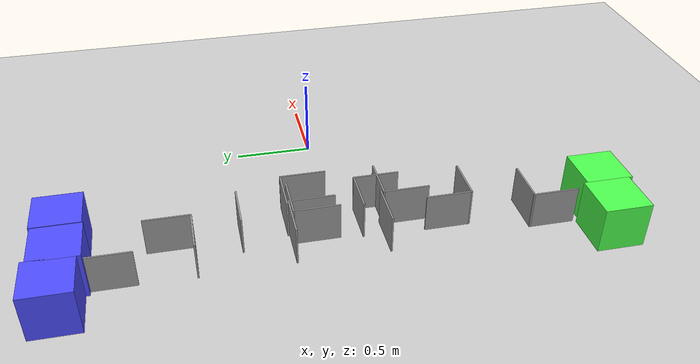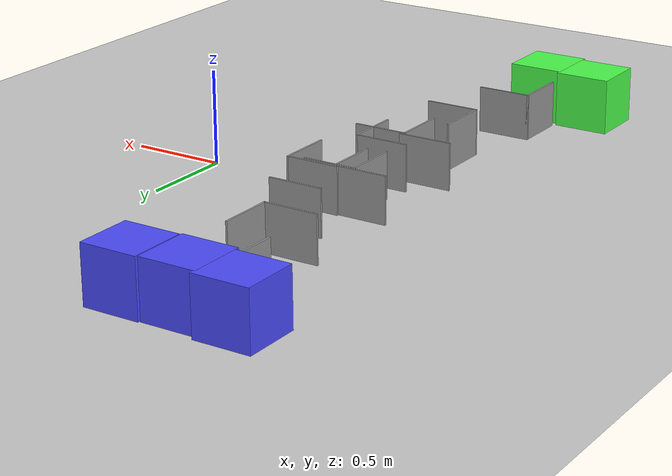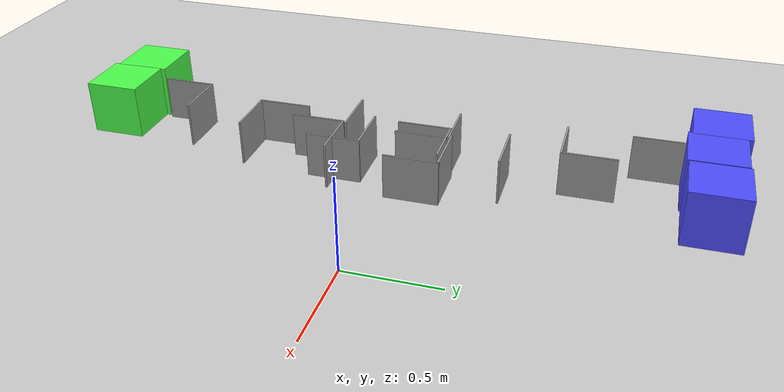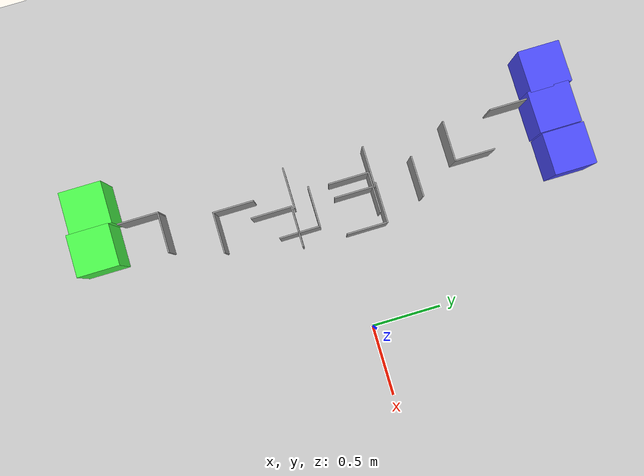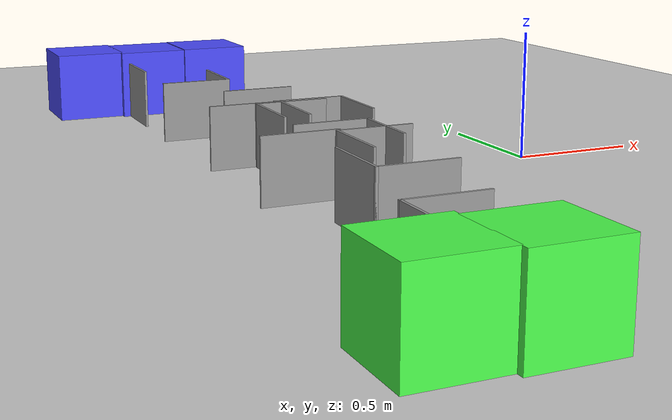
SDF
<sdf version="1.10">
 <world name="default">
  <model name="ground_plane">
   <static>true</static>
   <link name="link">
    <collision name="collision">
     <geometry><plane><normal>0 0 1</normal><size>1 1</size></plane></geometry>
    </collision>
    <visual name="visual">
     <geometry><plane><normal>0 0 1</normal><size>100 100</size></plane></geometry>
     <material>
      <ambient>0.800000012 0.800000012 0.800000012 1</ambient>
      <diffuse>0.800000012 0.800000012 0.800000012 1</diffuse>
      <specular>0.800000012 0.800000012 0.800000012 1</specular>
     </material>
    </visual>
    <inertial>
     <mass>1</mass>
     <inertia><ixx>1</ixx><ixy>0</ixy><ixz>0</ixz><iyy>1</iyy><iyz>0</iyz><izz>1</izz></inertia>
    </inertial>
   </link>
  </model>
  <model name="Box_Green_clone_6">
   <link name="link_0">
    <inertial>
     <mass>1</mass>
     <inertia>
      <ixx>0.166667</ixx>
      <ixy>0</ixy>
      <ixz>0</ixz>
      <iyy>0.166667</iyy>
      <iyz>0</iyz>
      <izz>0.166667</izz>
     </inertia>
    </inertial>
    <visual name="visual">
     <geometry><box><size>0.3 0.3 0.3</size></box></geometry>
     <material>
      <lighting>1</lighting>
      <script><uri>file://media/materials/scripts/gazebo.material</uri><name>Gazebo/Grey</name></script>
      <ambient>0.3 1 0.3 1</ambient>
      <diffuse>0.7 0.7 0.7 1</diffuse>
      <specular>0.01 0.01 0.01 1</specular>
      <emissive>0 0 0 1</emissive>
      <shader type="vertex"><normal_map>__default__</normal_map></shader>
     </material>
    </visual>
    <collision name="collision">
     <geometry><box><size>0.3 0.3 0.3</size></box></geometry>
     <surface>
      <friction>
       <ode><mu>1</mu><mu2>1</mu2><fdir1>0 0 0</fdir1><slip1>0</slip1><slip2>0</slip2></ode>
       <torsional>
        <coefficient>1</coefficient>
        <patch_radius>0</patch_radius>
        <surface_radius>0</surface_radius>
        <use_patch_radius>1</use_patch_radius>
        <ode><slip>0</slip></ode>
       </torsional>
      </friction>
      <bounce><restitution_coefficient>0</restitution_coefficient><threshold>1e+06</threshold></bounce>
      <contact>
       <collide_without_contact>0</collide_without_contact>
       <collide_without_contact_bitmask>1</collide_without_contact_bitmask>
       <collide_bitmask>1</collide_bitmask>
       <ode>
        <soft_cfm>0</soft_cfm>
        <soft_erp>0.2</soft_erp>
        <kp>1e+13</kp>
        <kd>1</kd>
        <max_vel>0.01</max_vel>
        <min_depth>0</min_depth>
       </ode>
       <bullet>
        <split_impulse>1</split_impulse>
        <split_impulse_penetration_threshold>-0.01</split_impulse_penetration_threshold>
        <soft_cfm>0</soft_cfm>
        <soft_erp>0.2</soft_erp>
        <kp>1e+13</kp>
        <kd>1</kd>
       </bullet>
      </contact>
     </surface>
    </collision>
   </link>
   <static>0</static>
   <pose>-1.04713 -1.68398 0.15 0 -0 3e-06</pose>
  </model>
  <model name="Box_Blue_clone_5">
   <link name="link_0">
    <inertial>
     <mass>1</mass>
     <inertia>
      <ixx>0.166667</ixx>
      <ixy>0</ixy>
      <ixz>0</ixz>
      <iyy>0.166667</iyy>
      <iyz>0</iyz>
      <izz>0.166667</izz>
     </inertia>
    </inertial>
    <visual name="visual">
     <geometry><box><size>0.3 0.3 0.3</size></box></geometry>
     <material>
      <lighting>1</lighting>
      <script><uri>file://media/materials/scripts/gazebo.material</uri><name>Gazebo/Grey</name></script>
      <ambient>0.3 0.3 1 1</ambient>
      <diffuse>0.7 0.7 0.7 1</diffuse>
      <specular>0.01 0.01 0.01 1</specular>
      <emissive>0 0 0 1</emissive>
      <shader type="vertex"><normal_map>__default__</normal_map></shader>
     </material>
    </visual>
    <collision name="collision">
     <geometry><box><size>0.3 0.3 0.3</size></box></geometry>
     <surface>
      <friction>
       <ode><mu>1</mu><mu2>1</mu2><fdir1>0 0 0</fdir1><slip1>0</slip1><slip2>0</slip2></ode>
       <torsional>
        <coefficient>1</coefficient>
        <patch_radius>0</patch_radius>
        <surface_radius>0</surface_radius>
        <use_patch_radius>1</use_patch_radius>
        <ode><slip>0</slip></ode>
       </torsional>
      </friction>
      <bounce><restitution_coefficient>0</restitution_coefficient><threshold>1e+06</threshold></bounce>
      <contact>
       <collide_without_contact>0</collide_without_contact>
       <collide_without_contact_bitmask>1</collide_without_contact_bitmask>
       <collide_bitmask>1</collide_bitmask>
       <ode>
        <soft_cfm>0</soft_cfm>
        <soft_erp>0.2</soft_erp>
        <kp>1e+13</kp>
        <kd>1</kd>
        <max_vel>0.01</max_vel>
        <min_depth>0</min_depth>
       </ode>
       <bullet>
        <split_impulse>1</split_impulse>
        <split_impulse_penetration_threshold>-0.01</split_impulse_penetration_threshold>
        <soft_cfm>0</soft_cfm>
        <soft_erp>0.2</soft_erp>
        <kp>1e+13</kp>
        <kd>1</kd>
       </bullet>
      </contact>
     </surface>
    </collision>
   </link>
   <static>0</static>
   <pose>-0.787586 1.63479 0.15 0 -0 0</pose>
  </model>
  <model name="Box_Blue_clone_6">
   <link name="link_0">
    <inertial>
     <mass>1</mass>
     <inertia>
      <ixx>0.166667</ixx>
      <ixy>0</ixy>
      <ixz>0</ixz>
      <iyy>0.166667</iyy>
      <iyz>0</iyz>
      <izz>0.166667</izz>
     </inertia>
    </inertial>
    <visual name="visual">
     <geometry><box><size>0.3 0.3 0.3</size></box></geometry>
     <material>
      <lighting>1</lighting>
      <script><uri>file://media/materials/scripts/gazebo.material</uri><name>Gazebo/Grey</name></script>
      <ambient>0.3 0.3 1 1</ambient>
      <diffuse>0.7 0.7 0.7 1</diffuse>
      <specular>0.01 0.01 0.01 1</specular>
      <emissive>0 0 0 1</emissive>
      <shader type="vertex"><normal_map>__default__</normal_map></shader>
     </material>
    </visual>
    <collision name="collision">
     <geometry><box><size>0.3 0.3 0.3</size></box></geometry>
     <surface>
      <friction>
       <ode><mu>1</mu><mu2>1</mu2><fdir1>0 0 0</fdir1><slip1>0</slip1><slip2>0</slip2></ode>
       <torsional>
        <coefficient>1</coefficient>
        <patch_radius>0</patch_radius>
        <surface_radius>0</surface_radius>
        <use_patch_radius>1</use_patch_radius>
        <ode><slip>0</slip></ode>
       </torsional>
      </friction>
      <bounce><restitution_coefficient>0</restitution_coefficient><threshold>1e+06</threshold></bounce>
      <contact>
       <collide_without_contact>0</collide_without_contact>
       <collide_without_contact_bitmask>1</collide_without_contact_bitmask>
       <collide_bitmask>1</collide_bitmask>
       <ode>
        <soft_cfm>0</soft_cfm>
        <soft_erp>0.2</soft_erp>
        <kp>1e+13</kp>
        <kd>1</kd>
        <max_vel>0.01</max_vel>
        <min_depth>0</min_depth>
       </ode>
       <bullet>
        <split_impulse>1</split_impulse>
        <split_impulse_penetration_threshold>-0.01</split_impulse_penetration_threshold>
        <soft_cfm>0</soft_cfm>
        <soft_erp>0.2</soft_erp>
        <kp>1e+13</kp>
        <kd>1</kd>
       </bullet>
      </contact>
     </surface>
    </collision>
   </link>
   <static>0</static>
   <pose>-1.09359 1.62644 0.15 0 -0 0</pose>
  </model>
  <model name="Box_Blue_clone_7">
   <link name="link_0">
    <inertial>
     <mass>1</mass>
     <inertia>
      <ixx>0.166667</ixx>
      <ixy>0</ixy>
      <ixz>0</ixz>
      <iyy>0.166667</iyy>
      <iyz>0</iyz>
      <izz>0.166667</izz>
     </inertia>
    </inertial>
    <visual name="visual">
     <geometry><box><size>0.3 0.3 0.3</size></box></geometry>
     <material>
      <lighting>1</lighting>
      <script><uri>file://media/materials/scripts/gazebo.material</uri><name>Gazebo/Grey</name></script>
      <ambient>0.3 0.3 1 1</ambient>
      <diffuse>0.7 0.7 0.7 1</diffuse>
      <specular>0.01 0.01 0.01 1</specular>
      <emissive>0 0 0 1</emissive>
      <shader type="vertex"><normal_map>__default__</normal_map></shader>
     </material>
    </visual>
    <collision name="collision">
     <geometry><box><size>0.3 0.3 0.3</size></box></geometry>
     <surface>
      <friction>
       <ode><mu>1</mu><mu2>1</mu2><fdir1>0 0 0</fdir1><slip1>0</slip1><slip2>0</slip2></ode>
       <torsional>
        <coefficient>1</coefficient>
        <patch_radius>0</patch_radius>
        <surface_radius>0</surface_radius>
        <use_patch_radius>1</use_patch_radius>
        <ode><slip>0</slip></ode>
       </torsional>
      </friction>
      <bounce><restitution_coefficient>0</restitution_coefficient><threshold>1e+06</threshold></bounce>
      <contact>
       <collide_without_contact>0</collide_without_contact>
       <collide_without_contact_bitmask>1</collide_without_contact_bitmask>
       <collide_bitmask>1</collide_bitmask>
       <ode>
        <soft_cfm>0</soft_cfm>
        <soft_erp>0.2</soft_erp>
        <kp>1e+13</kp>
        <kd>1</kd>
        <max_vel>0.01</max_vel>
        <min_depth>0</min_depth>
       </ode>
       <bullet>
        <split_impulse>1</split_impulse>
        <split_impulse_penetration_threshold>-0.01</split_impulse_penetration_threshold>
        <soft_cfm>0</soft_cfm>
        <soft_erp>0.2</soft_erp>
        <kp>1e+13</kp>
        <kd>1</kd>
       </bullet>
      </contact>
     </surface>
    </collision>
   </link>
   <static>0</static>
   <pose>-1.38309 1.65072 0.15 0 -0 0</pose>
  </model>
  <model name="Box_Green_clone_7">
   <link name="link_0">
    <inertial>
     <mass>1</mass>
     <inertia>
      <ixx>0.166667</ixx>
      <ixy>0</ixy>
      <ixz>0</ixz>
      <iyy>0.166667</iyy>
      <iyz>0</iyz>
      <izz>0.166667</izz>
     </inertia>
    </inertial>
    <visual name="visual">
     <geometry><box><size>0.3 0.3 0.3</size></box></geometry>
     <material>
      <lighting>1</lighting>
      <script><uri>file://media/materials/scripts/gazebo.material</uri><name>Gazebo/Grey</name></script>
      <ambient>0.3 1 0.3 1</ambient>
      <diffuse>0.7 0.7 0.7 1</diffuse>
      <specular>0.01 0.01 0.01 1</specular>
      <emissive>0 0 0 1</emissive>
      <shader type="vertex"><normal_map>__default__</normal_map></shader>
     </material>
    </visual>
    <collision name="collision">
     <geometry><box><size>0.3 0.3 0.3</size></box></geometry>
     <surface>
      <friction>
       <ode><mu>1</mu><mu2>1</mu2><fdir1>0 0 0</fdir1><slip1>0</slip1><slip2>0</slip2></ode>
       <torsional>
        <coefficient>1</coefficient>
        <patch_radius>0</patch_radius>
        <surface_radius>0</surface_radius>
        <use_patch_radius>1</use_patch_radius>
        <ode><slip>0</slip></ode>
       </torsional>
      </friction>
      <bounce><restitution_coefficient>0</restitution_coefficient><threshold>1e+06</threshold></bounce>
      <contact>
       <collide_without_contact>0</collide_without_contact>
       <collide_without_contact_bitmask>1</collide_without_contact_bitmask>
       <collide_bitmask>1</collide_bitmask>
       <ode>
        <soft_cfm>0</soft_cfm>
        <soft_erp>0.2</soft_erp>
        <kp>1e+13</kp>
        <kd>1</kd>
        <max_vel>0.01</max_vel>
        <min_depth>0</min_depth>
       </ode>
       <bullet>
        <split_impulse>1</split_impulse>
        <split_impulse_penetration_threshold>-0.01</split_impulse_penetration_threshold>
        <soft_cfm>0</soft_cfm>
        <soft_erp>0.2</soft_erp>
        <kp>1e+13</kp>
        <kd>1</kd>
       </bullet>
      </contact>
     </surface>
    </collision>
   </link>
   <static>0</static>
   <pose>-1.34247 -1.65973 0.15 -0 -0 -0.000195</pose>
  </model>
  <model name="Maze_I_V">
   <pose>-0.906485 0.583679 0 0 -0 0</pose>
   <link name="Wall_0">
    <collision name="Wall_0_Collision">
     <geometry><box><size>0.294 0.01 0.25</size></box></geometry>
     <pose>0 0 0.125 0 -0 0</pose>
    </collision>
    <visual name="Wall_0_Visual">
     <pose>0 0 0.125 0 -0 0</pose>
     <geometry><box><size>0.294 0.01 0.25</size></box></geometry>
     <material>
      <script><uri>file://media/materials/scripts/gazebo.material</uri><name>Gazebo/Grey</name></script>
      <ambient>1 1 1 1</ambient>
     </material>
     <meta><layer>0</layer></meta>
    </visual>
   </link>
   <static>1</static>
  </model>
  <model name="Maze_L_LB">
   <pose>-0.887272 0.126423 0 0 -0 0</pose>
   <link name="Wall_0">
    <collision name="Wall_0_Collision">
     <geometry><box><size>0.294 0.01 0.25</size></box></geometry>
     <pose>0 0 0.125 0 -0 0</pose>
    </collision>
    <visual name="Wall_0_Visual">
     <pose>0 0 0.125 0 -0 0</pose>
     <geometry><box><size>0.294 0.01 0.25</size></box></geometry>
     <material>
      <script><uri>file://media/materials/scripts/gazebo.material</uri><name>Gazebo/Grey</name></script>
      <ambient>1 1 1 1</ambient>
     </material>
     <meta><layer>0</layer></meta>
    </visual>
    <pose>0 0.142 0 0 -0 0</pose>
   </link>
   <link name="Wall_2">
    <collision name="Wall_2_Collision">
     <geometry><box><size>0.294 0.01 0.25</size></box></geometry>
     <pose>0 0 0.125 0 -0 0</pose>
    </collision>
    <visual name="Wall_2_Visual">
     <pose>0 0 0.125 0 -0 0</pose>
     <geometry><box><size>0.294 0.01 0.25</size></box></geometry>
     <material>
      <script><uri>file://media/materials/scripts/gazebo.material</uri><name>Gazebo/Grey</name></script>
      <ambient>1 1 1 1</ambient>
     </material>
     <meta><layer>0</layer></meta>
    </visual>
    <pose>-0.142 0 0 0 0 -1.5708</pose>
   </link>
   <static>1</static>
  </model>
  <model name="Maze_L_LU">
   <pose>-0.909191 -0.30162 0 0 -0 0</pose>
   <link name="Wall_0">
    <collision name="Wall_0_Collision">
     <geometry><box><size>0.294 0.01 0.25</size></box></geometry>
     <pose>0 0 0.125 0 -0 0</pose>
    </collision>
    <visual name="Wall_0_Visual">
     <pose>0 0 0.125 0 -0 0</pose>
     <geometry><box><size>0.294 0.01 0.25</size></box></geometry>
     <material>
      <script><uri>file://media/materials/scripts/gazebo.material</uri><name>Gazebo/Grey</name></script>
      <ambient>1 1 1 1</ambient>
     </material>
     <meta><layer>0</layer></meta>
    </visual>
    <pose>0 0.142 0 0 -0 3.14159</pose>
   </link>
   <link name="Wall_2">
    <collision name="Wall_2_Collision">
     <geometry><box><size>0.294 0.01 0.25</size></box></geometry>
     <pose>0 0 0.125 0 -0 0</pose>
    </collision>
    <visual name="Wall_2_Visual">
     <pose>0 0 0.125 0 -0 0</pose>
     <geometry><box><size>0.294 0.01 0.25</size></box></geometry>
     <material>
      <script><uri>file://media/materials/scripts/gazebo.material</uri><name>Gazebo/Grey</name></script>
      <ambient>1 1 1 1</ambient>
     </material>
     <meta><layer>0</layer></meta>
    </visual>
    <pose>0.142 0 0 0 0 -1.5708</pose>
   </link>
   <static>1</static>
  </model>
  <model name="Maze_L_RB">
   <pose>-0.92538 -0.694439 0 0 -0 0</pose>
   <link name="Wall_0">
    <collision name="Wall_0_Collision">
     <geometry><box><size>0.294 0.01 0.25</size></box></geometry>
     <pose>0 0 0.125 0 -0 0</pose>
    </collision>
    <visual name="Wall_0_Visual">
     <pose>0 0 0.125 0 -0 0</pose>
     <geometry><box><size>0.294 0.01 0.25</size></box></geometry>
     <material>
      <script><uri>file://media/materials/scripts/gazebo.material</uri><name>Gazebo/Grey</name></script>
      <ambient>1 1 1 1</ambient>
     </material>
     <meta><layer>0</layer></meta>
    </visual>
    <pose>0 -0.142 0 0 -0 0</pose>
   </link>
   <link name="Wall_2">
    <collision name="Wall_2_Collision">
     <geometry><box><size>0.294 0.01 0.25</size></box></geometry>
     <pose>0 0 0.125 0 -0 0</pose>
    </collision>
    <visual name="Wall_2_Visual">
     <pose>0 0 0.125 0 -0 0</pose>
     <geometry><box><size>0.294 0.01 0.25</size></box></geometry>
     <material>
      <script><uri>file://media/materials/scripts/gazebo.material</uri><name>Gazebo/Grey</name></script>
      <ambient>1 1 1 1</ambient>
     </material>
     <meta><layer>0</layer></meta>
    </visual>
    <pose>-0.142 0 0 0 -0 1.5708</pose>
   </link>
   <static>1</static>
  </model>
  <model name="Maze_I_H_clone_6">
   <pose>-1.20777 1.35352 0 0 -0 0</pose>
   <link name="Wall_0">
    <collision name="Wall_0_Collision">
     <geometry><box><size>0.294 0.01 0.25</size></box></geometry>
     <pose>0 0 0.125 0 -0 0</pose>
    </collision>
    <visual name="Wall_0_Visual">
     <pose>0 0 0.125 0 -0 0</pose>
     <geometry><box><size>0.294 0.01 0.25</size></box></geometry>
     <material>
      <script><uri>file://media/materials/scripts/gazebo.material</uri><name>Gazebo/Grey</name></script>
      <ambient>1 1 1 1</ambient>
     </material>
     <meta><layer>0</layer></meta>
    </visual>
    <pose>0 0 0 0 -0 1.5708</pose>
   </link>
   <static>1</static>
  </model>
  <model name="Maze_L_LB_clone_4">
   <pose>-1.0358 -1.34367 0 0 -0 0</pose>
   <link name="Wall_0">
    <collision name="Wall_0_Collision">
     <geometry><box><size>0.294 0.01 0.25</size></box></geometry>
     <pose>0 0 0.125 0 -0 0</pose>
    </collision>
    <visual name="Wall_0_Visual">
     <pose>0 0 0.125 0 -0 0</pose>
     <geometry><box><size>0.294 0.01 0.25</size></box></geometry>
     <material>
      <script><uri>file://media/materials/scripts/gazebo.material</uri><name>Gazebo/Grey</name></script>
      <ambient>1 1 1 1</ambient>
     </material>
     <meta><layer>0</layer></meta>
    </visual>
    <pose>0 0.142 0 0 -0 0</pose>
   </link>
   <link name="Wall_2">
    <collision name="Wall_2_Collision">
     <geometry><box><size>0.294 0.01 0.25</size></box></geometry>
     <pose>0 0 0.125 0 -0 0</pose>
    </collision>
    <visual name="Wall_2_Visual">
     <pose>0 0 0.125 0 -0 0</pose>
     <geometry><box><size>0.294 0.01 0.25</size></box></geometry>
     <material>
      <script><uri>file://media/materials/scripts/gazebo.material</uri><name>Gazebo/Grey</name></script>
      <ambient>1 1 1 1</ambient>
     </material>
     <meta><layer>0</layer></meta>
    </visual>
    <pose>-0.142 0 0 0 0 -1.5708</pose>
   </link>
   <static>1</static>
  </model>
  <model name="Maze_L_LB_clone_5_clone">
   <pose>-0.812262 -0.451405 0 0 -0 0</pose>
   <link name="Wall_0">
    <collision name="Wall_0_Collision">
     <geometry><box><size>0.294 0.01 0.25</size></box></geometry>
     <pose>0 0 0.125 0 -0 0</pose>
    </collision>
    <visual name="Wall_0_Visual">
     <pose>0 0 0.125 0 -0 0</pose>
     <geometry><box><size>0.294 0.01 0.25</size></box></geometry>
     <material>
      <script><uri>file://media/materials/scripts/gazebo.material</uri><name>Gazebo/Grey</name></script>
      <ambient>1 1 1 1</ambient>
     </material>
     <meta><layer>0</layer></meta>
    </visual>
    <pose>0 0.142 0 0 -0 0</pose>
   </link>
   <link name="Wall_2">
    <collision name="Wall_2_Collision">
     <geometry><box><size>0.294 0.01 0.25</size></box></geometry>
     <pose>0 0 0.125 0 -0 0</pose>
    </collision>
    <visual name="Wall_2_Visual">
     <pose>0 0 0.125 0 -0 0</pose>
     <geometry><box><size>0.294 0.01 0.25</size></box></geometry>
     <material>
      <script><uri>file://media/materials/scripts/gazebo.material</uri><name>Gazebo/Grey</name></script>
      <ambient>1 1 1 1</ambient>
     </material>
     <meta><layer>0</layer></meta>
    </visual>
    <pose>-0.142 0 0 0 0 -1.5708</pose>
   </link>
   <static>1</static>
  </model>
  <model name="Maze_I_V_clone_4">
   <pose>-1.08277 -0.291215 0 0 -0 0</pose>
   <link name="Wall_0">
    <collision name="Wall_0_Collision">
     <geometry><box><size>0.294 0.01 0.25</size></box></geometry>
     <pose>0 0 0.125 0 -0 0</pose>
    </collision>
    <visual name="Wall_0_Visual">
     <pose>0 0 0.125 0 -0 0</pose>
     <geometry><box><size>0.294 0.01 0.25</size></box></geometry>
     <material>
      <script><uri>file://media/materials/scripts/gazebo.material</uri><name>Gazebo/Grey</name></script>
      <ambient>1 1 1 1</ambient>
     </material>
     <meta><layer>0</layer></meta>
    </visual>
   </link>
   <static>1</static>
  </model>
  <model name="Maze_L_LU_clone_2">
   <pose>-1.0676 0.13954 0 0 -0 0</pose>
   <link name="Wall_0">
    <collision name="Wall_0_Collision">
     <geometry><box><size>0.294 0.01 0.25</size></box></geometry>
     <pose>0 0 0.125 0 -0 0</pose>
    </collision>
    <visual name="Wall_0_Visual">
     <pose>0 0 0.125 0 -0 0</pose>
     <geometry><box><size>0.294 0.01 0.25</size></box></geometry>
     <material>
      <script><uri>file://media/materials/scripts/gazebo.material</uri><name>Gazebo/Grey</name></script>
      <ambient>1 1 1 1</ambient>
     </material>
     <meta><layer>0</layer></meta>
    </visual>
    <pose>0 0.142 0 0 -0 3.14159</pose>
   </link>
   <link name="Wall_2">
    <collision name="Wall_2_Collision">
     <geometry><box><size>0.294 0.01 0.25</size></box></geometry>
     <pose>0 0 0.125 0 -0 0</pose>
    </collision>
    <visual name="Wall_2_Visual">
     <pose>0 0 0.125 0 -0 0</pose>
     <geometry><box><size>0.294 0.01 0.25</size></box></geometry>
     <material>
      <script><uri>file://media/materials/scripts/gazebo.material</uri><name>Gazebo/Grey</name></script>
      <ambient>1 1 1 1</ambient>
     </material>
     <meta><layer>0</layer></meta>
    </visual>
    <pose>0.142 0 0 0 0 -1.5708</pose>
   </link>
   <static>1</static>
  </model>
  <model name="Maze_L_LU_clone_3">
   <pose>-0.803557 0.151299 0 0 -0 0</pose>
   <link name="Wall_0">
    <collision name="Wall_0_Collision">
     <geometry><box><size>0.294 0.01 0.25</size></box></geometry>
     <pose>0 0 0.125 0 -0 0</pose>
    </collision>
    <visual name="Wall_0_Visual">
     <pose>0 0 0.125 0 -0 0</pose>
     <geometry><box><size>0.294 0.01 0.25</size></box></geometry>
     <material>
      <script><uri>file://media/materials/scripts/gazebo.material</uri><name>Gazebo/Grey</name></script>
      <ambient>1 1 1 1</ambient>
     </material>
     <meta><layer>0</layer></meta>
    </visual>
    <pose>0 0.142 0 0 -0 3.14159</pose>
   </link>
   <link name="Wall_2">
    <collision name="Wall_2_Collision">
     <geometry><box><size>0.294 0.01 0.25</size></box></geometry>
     <pose>0 0 0.125 0 -0 0</pose>
    </collision>
    <visual name="Wall_2_Visual">
     <pose>0 0 0.125 0 -0 0</pose>
     <geometry><box><size>0.294 0.01 0.25</size></box></geometry>
     <material>
      <script><uri>file://media/materials/scripts/gazebo.material</uri><name>Gazebo/Grey</name></script>
      <ambient>1 1 1 1</ambient>
     </material>
     <meta><layer>0</layer></meta>
    </visual>
    <pose>0.142 0 0 0 0 -1.5708</pose>
   </link>
   <static>1</static>
  </model>
  <model name="Maze_L_RU_clone_2">
   <pose>-1.07785 1.00939 0 0 -0 0</pose>
   <link name="Wall_11">
    <collision name="Wall_11_Collision">
     <geometry><box><size>0.294 0.01 0.25</size></box></geometry>
     <pose>0 0 0.125 0 -0 0</pose>
    </collision>
    <visual name="Wall_11_Visual">
     <pose>0 0 0.125 0 -0 0</pose>
     <geometry><box><size>0.294 0.01 0.25</size></box></geometry>
     <material>
      <script><uri>file://media/materials/scripts/gazebo.material</uri><name>Gazebo/Grey</name></script>
      <ambient>1 1 1 1</ambient>
     </material>
     <meta><layer>0</layer></meta>
    </visual>
    <pose>0 -0.142 0 0 -0 0</pose>
   </link>
   <link name="Wall_12">
    <collision name="Wall_12_Collision">
     <geometry><box><size>0.294 0.01 0.25</size></box></geometry>
     <pose>0 0 0.125 0 -0 0</pose>
    </collision>
    <visual name="Wall_12_Visual">
     <pose>0 0 0.125 0 -0 0</pose>
     <geometry><box><size>0.294 0.01 0.25</size></box></geometry>
     <material>
      <script><uri>file://media/materials/scripts/gazebo.material</uri><name>Gazebo/Grey</name></script>
      <ambient>1 1 1 1</ambient>
     </material>
     <meta><layer>0</layer></meta>
    </visual>
    <pose>0.142 0 0 0 -0 1.5708</pose>
   </link>
   <static>1</static>
  </model>
 </world>
</sdf>
